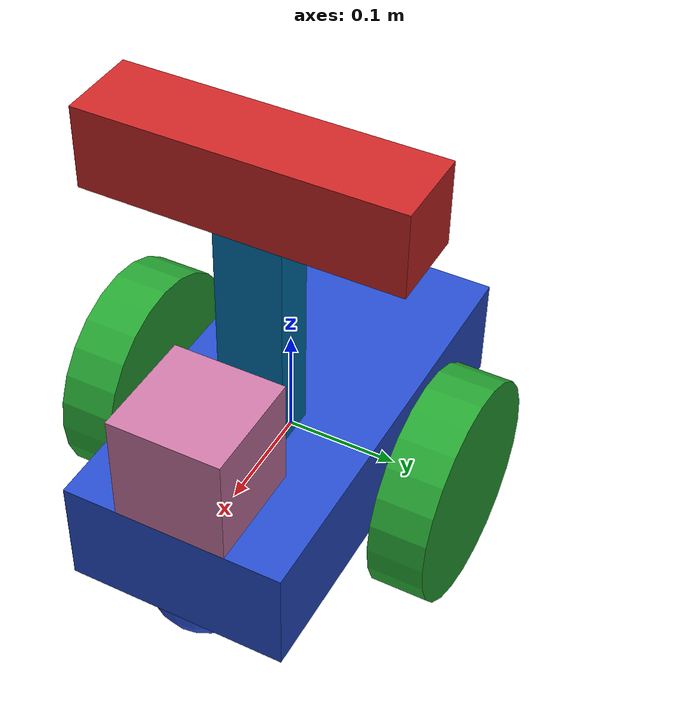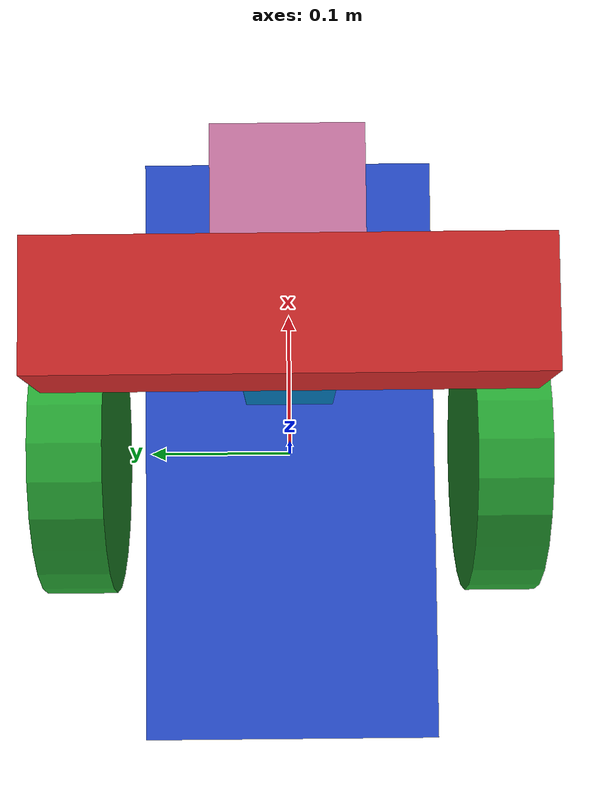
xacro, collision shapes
<?xml version='1.0'?>

<robot name="slam_bot" xmlns:xacro="http://www.ros.org/wiki/xacro">

  <xacro:include filename="$(find udacity_bot)/urdf/slam.gazebo" />

  <xacro:include filename="$(find udacity_bot)/urdf/slam/chassis.xacro" />
  <xacro:include filename="$(find udacity_bot)/urdf/slam/right_wheel.xacro" />
  <xacro:include filename="$(find udacity_bot)/urdf/slam/left_wheel.xacro" />
  <xacro:include filename="$(find udacity_bot)/urdf/slam/rod.xacro" />
  <xacro:include filename="$(find udacity_bot)/urdf/slam/kinect.xacro" />
  <xacro:include filename="$(find udacity_bot)/urdf/slam/laser.xacro" />

</robot>

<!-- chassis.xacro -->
<robot name="slam_bot" xmlns:xacro="http://www.ros.org/wiki/xacro">

  <!-- footprint LINK -->
  <link name="robot_footprint"></link>

  <!-- footprint + chassis JOINT -->
  <joint name="robot_footprint_joint" type="fixed">
    <origin xyz="0 0 0" rpy="0 0 0" />
    <parent link="robot_footprint"/>
    <child link="chassis" />
  </joint>

  <!-- chassis LINK -->
  <link name='chassis'>
    <pose>0 0 0.1 0 0 0</pose>

    <inertial>
      <mass value="15.0"/>
      <origin xyz="0.0 0 0" rpy=" 0 0 0"/>
      <inertia
          ixx="0.1" ixy="0" ixz="0"
          iyy="0.1" iyz="0"
          izz="0.1"
      />
    </inertial>

    <collision name='collision'>
      <origin xyz="0 0 0" rpy=" 0 0 0"/>
      <geometry>
        <box size=".4 .2 .1"/>
      </geometry>
    </collision>

    <visual name='chassis_visual'>
      <origin xyz="0 0 0" rpy=" 0 0 0"/>
      <geometry>
        <box size=".4 .2 .1"/>
      </geometry>
    </visual>

    <collision name='back_caster_collision'>
      <origin xyz="-0.15 0 -0.05" rpy=" 0 0 0"/>
      <geometry>
        <sphere radius="0.0499"/>
      </geometry>
      <surface>
        <friction>
          <ode>
            <mu>0</mu>
            <mu2>0</mu2>
            <slip1>1.0</slip1>
            <slip2>1.0</slip2>
          </ode>
        </friction>
      </surface>
    </collision>

    <visual name='back_caster_visual'>
      <origin xyz="-0.15 0 -0.05" rpy=" 0 0 0"/>
      <geometry>
        <sphere radius="0.0499"/>
      </geometry>
    </visual>

    <collision name='front_caster_collision'>
      <origin xyz="0.15 0 -0.05" rpy=" 0 0 0"/>
      <geometry>
        <sphere radius="0.0499"/>
      </geometry>
      <surface>
        <friction>
          <ode>
            <mu>0</mu>
            <mu2>0</mu2>
            <slip1>1.0</slip1>
            <slip2>1.0</slip2>
          </ode>
        </friction>
      </surface>
    </collision>

    <visual name='front_caster_visual'>
      <origin xyz="0.15 0 -0.05" rpy=" 0 0 0"/>
      <geometry>
        <sphere radius="0.0499"/>
      </geometry>
    </visual>

  </link>
</robot>

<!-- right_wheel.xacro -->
<robot name="slam_bot" xmlns:xacro="http://www.ros.org/wiki/xacro">

  <!-- right wheel LINK -->
  <link name='right_wheel'>
    <inertial>
      <mass value="5.0"/>
      <origin xyz="0 0 0" rpy=" 0 1.5707 -1.5707"/>
      <inertia
        ixx="0.1" ixy="0" ixz="0"
        iyy="0.1" iyz="0"
        izz="0.1"
      />
    </inertial>

    <collision>
      <origin xyz="0 0 0" rpy=" 0 1.5707 -1.5707"/>
      <geometry>
        <cylinder length="0.05" radius="0.1"/>
      </geometry>
    </collision>

    <visual>
      <origin xyz="0 0 0" rpy=" 0 1.5707 -1.5707"/>
      <geometry>
        <cylinder length="0.05" radius="0.1"/>
      </geometry>
    </visual>
  </link>

  <!-- right wheel + chassis JOINT -->
  <joint type="continuous" name="right_wheel_hinge">
    <origin xyz="0 -0.15 0" rpy="0 0 0"/>
    <child link="right_wheel"/>
    <parent link="chassis"/>
    <axis xyz="0 1 0" rpy="0 0 0"/>
    <limit effort="10000" velocity="1000"/>
    <joint_properties damping="1.0" friction="1.0"/>
  </joint>
</robot>

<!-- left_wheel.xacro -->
<robot name="slam_bot" xmlns:xacro="http://www.ros.org/wiki/xacro">

  <!-- left wheel - LINK -->
  <link name='left_wheel'>
    <inertial>
      <mass value="5.0"/>
      <origin xyz="0 0 0" rpy=" 0 1.5707 1.5707"/>
      <inertia
      ixx="0.1" ixy="0" ixz="0"
      iyy="0.1" iyz="0"
      izz="0.1"
      />
    </inertial>

    <collision>
      <origin xyz="0 0 0" rpy=" 0 1.5707 1.5707"/>
      <geometry>
        <cylinder length="0.05" radius="0.1"/>
      </geometry>
    </collision>

    <visual>
      <origin xyz="0 0 0" rpy=" 0 1.5707 1.5707"/>
      <geometry>
        <cylinder length="0.05" radius="0.1"/>
      </geometry>
    </visual>
  </link>

  <!-- left wheel + chassis - JOINT -->
  <joint type="continuous" name="left_wheel_hinge">
    <origin xyz="0 0.15 0" rpy="0 0 0"/>
    <child link="left_wheel"/>
    <parent link="chassis"/>
    <axis xyz="0 1 0" rpy="0 0 0"/>
    <limit effort="10000" velocity="1000"/>
    <joint_properties damping="1.0" friction="1.0"/>
  </joint>
</robot>

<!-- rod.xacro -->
<robot name="rod" xmlns:xacro="http://www.ros.org/wiki/xacro">
  <link name='rod'>
    <inertial>
      <mass value="1.0"/>
      <inertia
          ixx="0.2" ixy="0" ixz="0"
          iyy="0.2" iyz="0"
          izz="0.2"
      />
    </inertial>

    <collision name='rod_collision'>
      <geometry>
        <box size="0.04 0.06 0.35"/>
      </geometry>
    </collision>

    <visual name='rod_visual'>
      <geometry>
        <box size="0.04 0.06 0.35"/>
      </geometry>
    </visual>
  </link>

  <joint type="fixed" name="rod_joint">
    <origin xyz="0.05 0 0.1" rpy="0 0 0"/>
    <child link="rod"/>
    <parent link="chassis"/>
  </joint>
</robot>

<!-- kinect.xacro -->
<robot name="slam_bot" xmlns:xacro="http://www.ros.org/wiki/xacro">

  <!-- kinect - LINK -->
  <link name='kinect'>
    <inertial>
      <mass value="0.1"/>
      <origin xyz="0 0 0" rpy="0 0 0"/>
      <inertia
        ixx="1e-6" ixy="0" ixz="0"
        iyy="1e-6" iyz="0"
        izz="1e-6"
      />
    </inertial>

    <collision name='kinect_collision'>
      <origin xyz="0 0 0" rpy="0 0 0"/>
      <geometry>
        <box size="0.07271 0.27794 0.073" />
      </geometry>
    </collision>

    <visual name='kinect_visual'>
      <origin xyz="0 0 0" rpy="0 0 1.5708"/>
      <geometry>
        <mesh filename="package://udacity_bot/meshes/kinect.dae"/>
      </geometry>
    </visual>
  </link>

  <!-- kinect + chassis JOINT -->
  <joint type="fixed" name="kinect_joint">
    <origin xyz="0 0 0.2" rpy="0 0 0"/>
    <child link="kinect"/>
    <parent link="rod"/>
  </joint>
</robot>

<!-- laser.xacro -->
<robot name="slam_bot" xmlns:xacro="http://www.ros.org/wiki/xacro">

  <!-- laser rangefinder - LINK -->
  <link name='hokuyo'>
    <inertial>
      <mass value="0.1"/>
      <origin xyz="0 0 0" rpy="0 0 0"/>
      <inertia
        ixx="1e-6" ixy="0" ixz="0"
        iyy="1e-6" iyz="0"
        izz="1e-6"
      />
    </inertial>

    <collision name='hokuyo_collision'>
      <origin xyz="0 0 0" rpy=" 0 0 0"/>
      <geometry>
        <box size="0.1 0.1 0.1" />
      </geometry>
    </collision>

    <visual name='hokuyo_visual'>
      <origin xyz="0 0 0" rpy="0 0 0"/>
      <geometry>
        <mesh filename="package://udacity_bot/meshes/hokuyo.dae"/>
      </geometry>
    </visual>
  </link>

  <!-- laser rangefinder + chassis JOINT -->
  <joint type="fixed" name="hokuyo_joint">
    <origin xyz="0.15 0 0.1" rpy="0 0 0"/>
    <child link="hokuyo"/>
    <parent link="chassis"/>
  </joint>
</robot>
